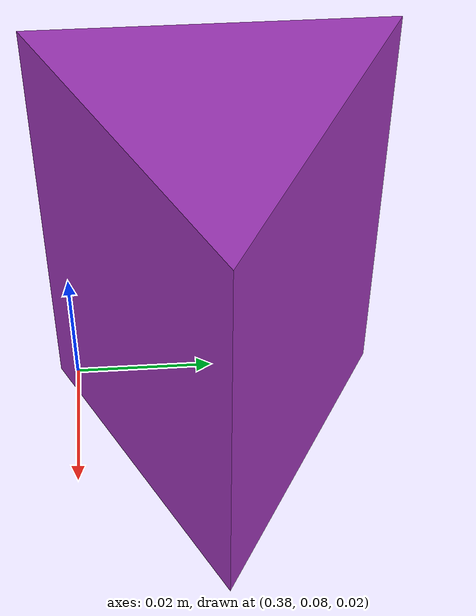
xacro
<?xml version="1.0"?>
<robot name="triangle">

<link name="base_link">
  <collision>
    <origin xyz="0.4 0.1 0.06" rpy="0 0 -1.57"/>
    <geometry>
        <box size="0.05 0.043 0.06"/>
    </geometry>
  </collision>

  <visual>
    <origin xyz="0.4 0.1 0.03" rpy="0 0 -1.57"/>
    <geometry>
        <mesh filename="file://$(find symphony_pnp)/models/triangle.dae"/>
    </geometry>
  </visual>

  <inertial>
    <origin xyz="0.4 0.1 0.06" rpy="0 0 -1.57" />
    <mass value="0.05" />
    <inertia
      ixx="2.2708e-5" ixy="0.0" ixz="0.0"
      iyy="2.5417e-5" iyz="0.0"
      izz="1.8121e-5" />
  </inertial>
  </link>

<gazebo reference="base_link">
  <material>Gazebo/Purple</material>
    <mu1>20.0</mu1>
    <mu2>20.0</mu2>
</gazebo>

</robot>
